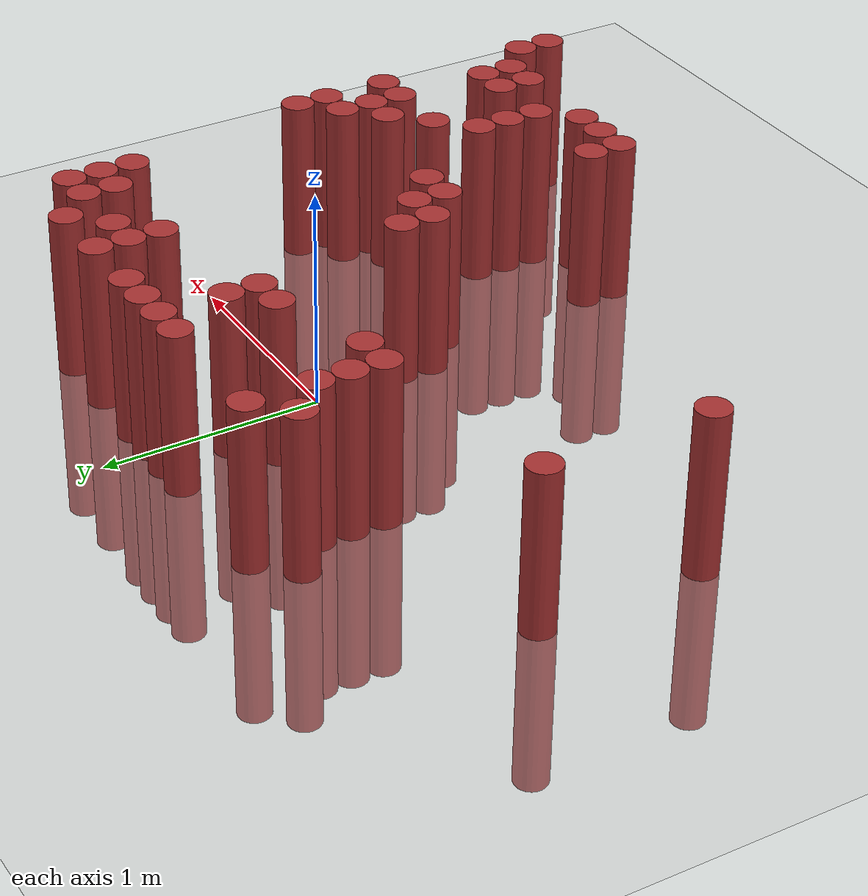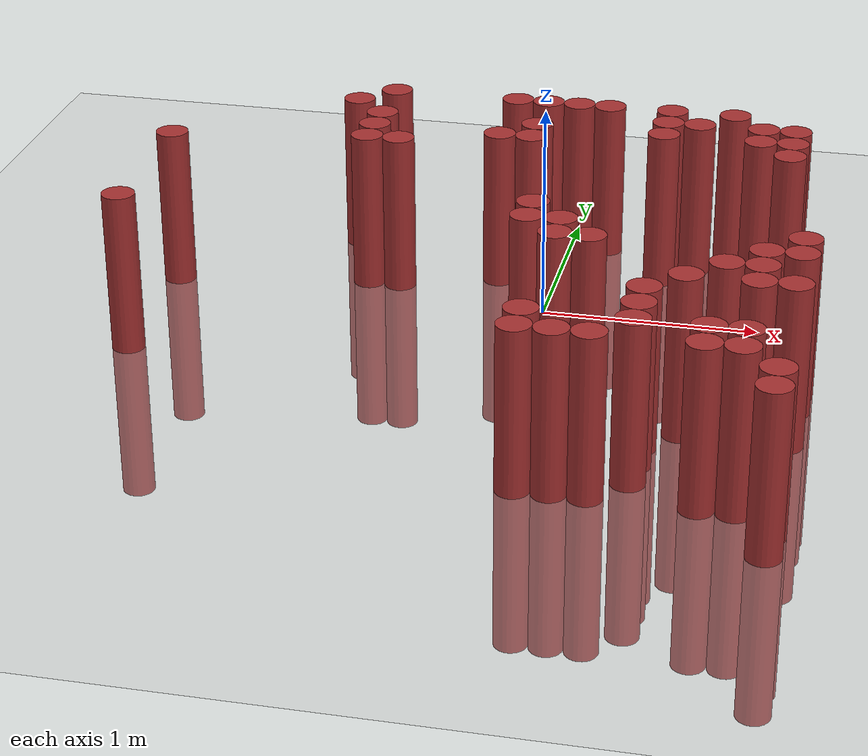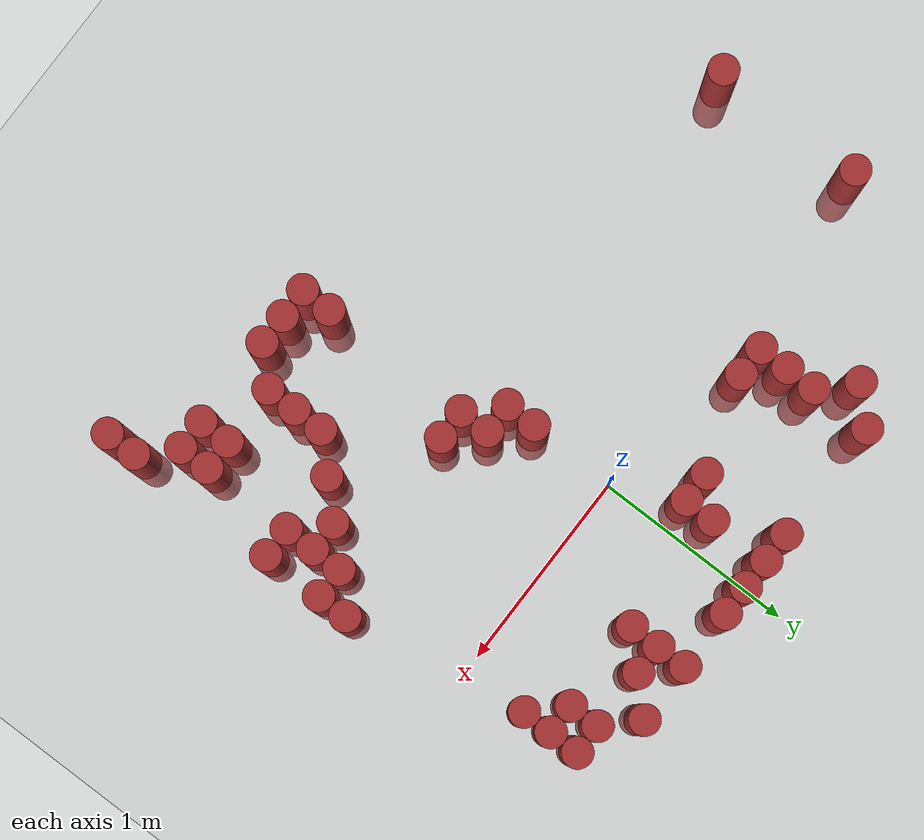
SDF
<sdf version="1.6">
 <world name="default">
  <model name="ground_plane">
   <static>1</static>
   <link name="link">
    <collision name="collision">
     <geometry><plane><normal>0 0 1</normal><size>100 100</size></plane></geometry>
     <surface><friction><ode><mu>100</mu><mu2>50</mu2></ode></friction></surface>
    </collision>
    <visual name="visual">
     <cast_shadows>0</cast_shadows>
     <geometry><plane><normal>0 0 1</normal><size>100 100</size></plane></geometry>
     <material>
      <script><uri>file://media/materials/scripts/gazebo.material</uri><name>Gazebo/Grey</name></script>
     </material>
    </visual>
   </link>
  </model>
  <model name="unit_cylinder_303">
   <static>1</static>
   <pose>-1.775000 -0.725000 0.000000 0.000000 0.000000 0.000000</pose>
   <link name="link">
    <inertial>
     <mass>1</mass>
     <inertia><ixx>0.145833</ixx><ixy>0</ixy><ixz>0</ixz><iyy>0.145833</iyy><iyz>0</iyz><izz>0.125</izz></inertia>
    </inertial>
    <collision name="collision">
     <geometry><cylinder><radius>0.075000</radius><length>1.5</length></cylinder></geometry>
    </collision>
    <visual name="visual">
     <geometry><cylinder><radius>0.075000</radius><length>1.5</length></cylinder></geometry>
     <material>
      <ambient>0.648000 0.192000 0.192000 1</ambient>
      <diffuse>0.648000 0.192000 0.192000 1</diffuse>
     </material>
     <material>
      <script><name>Gazebo/Grey</name><uri>file://media/materials/scripts/gazebo.material</uri></script>
     </material>
    </visual>
   </link>
  </model>
  <model name="unit_cylinder_304">
   <static>1</static>
   <pose>-1.775000 0.025000 0.000000 0.000000 0.000000 0.000000</pose>
   <link name="link">
    <inertial>
     <mass>1</mass>
     <inertia><ixx>0.145833</ixx><ixy>0</ixy><ixz>0</ixz><iyy>0.145833</iyy><iyz>0</iyz><izz>0.125</izz></inertia>
    </inertial>
    <collision name="collision">
     <geometry><cylinder><radius>0.075000</radius><length>1.5</length></cylinder></geometry>
    </collision>
    <visual name="visual">
     <geometry><cylinder><radius>0.075000</radius><length>1.5</length></cylinder></geometry>
     <material>
      <ambient>0.648000 0.192000 0.192000 1</ambient>
      <diffuse>0.648000 0.192000 0.192000 1</diffuse>
     </material>
     <material>
      <script><name>Gazebo/Grey</name><uri>file://media/materials/scripts/gazebo.material</uri></script>
     </material>
    </visual>
   </link>
  </model>
  <model name="unit_cylinder_313">
   <static>1</static>
   <pose>-1.025000 0.625000 0.000000 0.000000 0.000000 0.000000</pose>
   <link name="link">
    <inertial>
     <mass>1</mass>
     <inertia><ixx>0.145833</ixx><ixy>0</ixy><ixz>0</ixz><iyy>0.145833</iyy><iyz>0</iyz><izz>0.125</izz></inertia>
    </inertial>
    <collision name="collision">
     <geometry><cylinder><radius>0.075000</radius><length>1.5</length></cylinder></geometry>
    </collision>
    <visual name="visual">
     <geometry><cylinder><radius>0.075000</radius><length>1.5</length></cylinder></geometry>
     <material>
      <ambient>0.648000 0.192000 0.192000 1</ambient>
      <diffuse>0.648000 0.192000 0.192000 1</diffuse>
     </material>
     <material>
      <script><name>Gazebo/Grey</name><uri>file://media/materials/scripts/gazebo.material</uri></script>
     </material>
    </visual>
   </link>
  </model>
  <model name="unit_cylinder_316">
   <static>1</static>
   <pose>-0.875000 0.175000 0.000000 0.000000 0.000000 0.000000</pose>
   <link name="link">
    <inertial>
     <mass>1</mass>
     <inertia><ixx>0.145833</ixx><ixy>0</ixy><ixz>0</ixz><iyy>0.145833</iyy><iyz>0</iyz><izz>0.125</izz></inertia>
    </inertial>
    <collision name="collision">
     <geometry><cylinder><radius>0.075000</radius><length>1.5</length></cylinder></geometry>
    </collision>
    <visual name="visual">
     <geometry><cylinder><radius>0.075000</radius><length>1.5</length></cylinder></geometry>
     <material>
      <ambient>0.648000 0.192000 0.192000 1</ambient>
      <diffuse>0.648000 0.192000 0.192000 1</diffuse>
     </material>
     <material>
      <script><name>Gazebo/Grey</name><uri>file://media/materials/scripts/gazebo.material</uri></script>
     </material>
    </visual>
   </link>
  </model>
  <model name="unit_cylinder_317">
   <static>1</static>
   <pose>-0.875000 0.325000 0.000000 0.000000 0.000000 0.000000</pose>
   <link name="link">
    <inertial>
     <mass>1</mass>
     <inertia><ixx>0.145833</ixx><ixy>0</ixy><ixz>0</ixz><iyy>0.145833</iyy><iyz>0</iyz><izz>0.125</izz></inertia>
    </inertial>
    <collision name="collision">
     <geometry><cylinder><radius>0.075000</radius><length>1.5</length></cylinder></geometry>
    </collision>
    <visual name="visual">
     <geometry><cylinder><radius>0.075000</radius><length>1.5</length></cylinder></geometry>
     <material>
      <ambient>0.648000 0.192000 0.192000 1</ambient>
      <diffuse>0.648000 0.192000 0.192000 1</diffuse>
     </material>
     <material>
      <script><name>Gazebo/Grey</name><uri>file://media/materials/scripts/gazebo.material</uri></script>
     </material>
    </visual>
   </link>
  </model>
  <model name="unit_cylinder_318">
   <static>1</static>
   <pose>-0.875000 0.475000 0.000000 0.000000 0.000000 0.000000</pose>
   <link name="link">
    <inertial>
     <mass>1</mass>
     <inertia><ixx>0.145833</ixx><ixy>0</ixy><ixz>0</ixz><iyy>0.145833</iyy><iyz>0</iyz><izz>0.125</izz></inertia>
    </inertial>
    <collision name="collision">
     <geometry><cylinder><radius>0.075000</radius><length>1.5</length></cylinder></geometry>
    </collision>
    <visual name="visual">
     <geometry><cylinder><radius>0.075000</radius><length>1.5</length></cylinder></geometry>
     <material>
      <ambient>0.648000 0.192000 0.192000 1</ambient>
      <diffuse>0.648000 0.192000 0.192000 1</diffuse>
     </material>
     <material>
      <script><name>Gazebo/Grey</name><uri>file://media/materials/scripts/gazebo.material</uri></script>
     </material>
    </visual>
   </link>
  </model>
  <model name="unit_cylinder_319">
   <static>1</static>
   <pose>-0.875000 0.775000 0.000000 0.000000 0.000000 0.000000</pose>
   <link name="link">
    <inertial>
     <mass>1</mass>
     <inertia><ixx>0.145833</ixx><ixy>0</ixy><ixz>0</ixz><iyy>0.145833</iyy><iyz>0</iyz><izz>0.125</izz></inertia>
    </inertial>
    <collision name="collision">
     <geometry><cylinder><radius>0.075000</radius><length>1.5</length></cylinder></geometry>
    </collision>
    <visual name="visual">
     <geometry><cylinder><radius>0.075000</radius><length>1.5</length></cylinder></geometry>
     <material>
      <ambient>0.648000 0.192000 0.192000 1</ambient>
      <diffuse>0.648000 0.192000 0.192000 1</diffuse>
     </material>
     <material>
      <script><name>Gazebo/Grey</name><uri>file://media/materials/scripts/gazebo.material</uri></script>
     </material>
    </visual>
   </link>
  </model>
  <model name="unit_cylinder_322">
   <static>1</static>
   <pose>-0.725000 0.175000 0.000000 0.000000 0.000000 0.000000</pose>
   <link name="link">
    <inertial>
     <mass>1</mass>
     <inertia><ixx>0.145833</ixx><ixy>0</ixy><ixz>0</ixz><iyy>0.145833</iyy><iyz>0</iyz><izz>0.125</izz></inertia>
    </inertial>
    <collision name="collision">
     <geometry><cylinder><radius>0.075000</radius><length>1.5</length></cylinder></geometry>
    </collision>
    <visual name="visual">
     <geometry><cylinder><radius>0.075000</radius><length>1.5</length></cylinder></geometry>
     <material>
      <ambient>0.648000 0.192000 0.192000 1</ambient>
      <diffuse>0.648000 0.192000 0.192000 1</diffuse>
     </material>
     <material>
      <script><name>Gazebo/Grey</name><uri>file://media/materials/scripts/gazebo.material</uri></script>
     </material>
    </visual>
   </link>
  </model>
  <model name="unit_cylinder_328">
   <static>1</static>
   <pose>-0.275000 0.325000 0.000000 0.000000 0.000000 0.000000</pose>
   <link name="link">
    <inertial>
     <mass>1</mass>
     <inertia><ixx>0.145833</ixx><ixy>0</ixy><ixz>0</ixz><iyy>0.145833</iyy><iyz>0</iyz><izz>0.125</izz></inertia>
    </inertial>
    <collision name="collision">
     <geometry><cylinder><radius>0.075000</radius><length>1.5</length></cylinder></geometry>
    </collision>
    <visual name="visual">
     <geometry><cylinder><radius>0.075000</radius><length>1.5</length></cylinder></geometry>
     <material>
      <ambient>0.648000 0.192000 0.192000 1</ambient>
      <diffuse>0.648000 0.192000 0.192000 1</diffuse>
     </material>
     <material>
      <script><name>Gazebo/Grey</name><uri>file://media/materials/scripts/gazebo.material</uri></script>
     </material>
    </visual>
   </link>
  </model>
  <model name="unit_cylinder_329">
   <static>1</static>
   <pose>-0.275000 0.775000 0.000000 0.000000 0.000000 0.000000</pose>
   <link name="link">
    <inertial>
     <mass>1</mass>
     <inertia><ixx>0.145833</ixx><ixy>0</ixy><ixz>0</ixz><iyy>0.145833</iyy><iyz>0</iyz><izz>0.125</izz></inertia>
    </inertial>
    <collision name="collision">
     <geometry><cylinder><radius>0.075000</radius><length>1.5</length></cylinder></geometry>
    </collision>
    <visual name="visual">
     <geometry><cylinder><radius>0.075000</radius><length>1.5</length></cylinder></geometry>
     <material>
      <ambient>0.648000 0.192000 0.192000 1</ambient>
      <diffuse>0.648000 0.192000 0.192000 1</diffuse>
     </material>
     <material>
      <script><name>Gazebo/Grey</name><uri>file://media/materials/scripts/gazebo.material</uri></script>
     </material>
    </visual>
   </link>
  </model>
  <model name="unit_cylinder_336">
   <static>1</static>
   <pose>-0.125000 0.325000 0.000000 0.000000 0.000000 0.000000</pose>
   <link name="link">
    <inertial>
     <mass>1</mass>
     <inertia><ixx>0.145833</ixx><ixy>0</ixy><ixz>0</ixz><iyy>0.145833</iyy><iyz>0</iyz><izz>0.125</izz></inertia>
    </inertial>
    <collision name="collision">
     <geometry><cylinder><radius>0.075000</radius><length>1.5</length></cylinder></geometry>
    </collision>
    <visual name="visual">
     <geometry><cylinder><radius>0.075000</radius><length>1.5</length></cylinder></geometry>
     <material>
      <ambient>0.648000 0.192000 0.192000 1</ambient>
      <diffuse>0.648000 0.192000 0.192000 1</diffuse>
     </material>
     <material>
      <script><name>Gazebo/Grey</name><uri>file://media/materials/scripts/gazebo.material</uri></script>
     </material>
    </visual>
   </link>
  </model>
  <model name="unit_cylinder_337">
   <static>1</static>
   <pose>-0.125000 0.475000 0.000000 0.000000 0.000000 0.000000</pose>
   <link name="link">
    <inertial>
     <mass>1</mass>
     <inertia><ixx>0.145833</ixx><ixy>0</ixy><ixz>0</ixz><iyy>0.145833</iyy><iyz>0</iyz><izz>0.125</izz></inertia>
    </inertial>
    <collision name="collision">
     <geometry><cylinder><radius>0.075000</radius><length>1.5</length></cylinder></geometry>
    </collision>
    <visual name="visual">
     <geometry><cylinder><radius>0.075000</radius><length>1.5</length></cylinder></geometry>
     <material>
      <ambient>0.648000 0.192000 0.192000 1</ambient>
      <diffuse>0.648000 0.192000 0.192000 1</diffuse>
     </material>
     <material>
      <script><name>Gazebo/Grey</name><uri>file://media/materials/scripts/gazebo.material</uri></script>
     </material>
    </visual>
   </link>
  </model>
  <model name="unit_cylinder_338">
   <static>1</static>
   <pose>-0.125000 0.775000 0.000000 0.000000 0.000000 0.000000</pose>
   <link name="link">
    <inertial>
     <mass>1</mass>
     <inertia><ixx>0.145833</ixx><ixy>0</ixy><ixz>0</ixz><iyy>0.145833</iyy><iyz>0</iyz><izz>0.125</izz></inertia>
    </inertial>
    <collision name="collision">
     <geometry><cylinder><radius>0.075000</radius><length>1.5</length></cylinder></geometry>
    </collision>
    <visual name="visual">
     <geometry><cylinder><radius>0.075000</radius><length>1.5</length></cylinder></geometry>
     <material>
      <ambient>0.648000 0.192000 0.192000 1</ambient>
      <diffuse>0.648000 0.192000 0.192000 1</diffuse>
     </material>
     <material>
      <script><name>Gazebo/Grey</name><uri>file://media/materials/scripts/gazebo.material</uri></script>
     </material>
    </visual>
   </link>
  </model>
  <model name="unit_cylinder_342">
   <static>1</static>
   <pose>0.025000 -0.575000 0.000000 0.000000 0.000000 0.000000</pose>
   <link name="link">
    <inertial>
     <mass>1</mass>
     <inertia><ixx>0.145833</ixx><ixy>0</ixy><ixz>0</ixz><iyy>0.145833</iyy><iyz>0</iyz><izz>0.125</izz></inertia>
    </inertial>
    <collision name="collision">
     <geometry><cylinder><radius>0.075000</radius><length>1.5</length></cylinder></geometry>
    </collision>
    <visual name="visual">
     <geometry><cylinder><radius>0.075000</radius><length>1.5</length></cylinder></geometry>
     <material>
      <ambient>0.648000 0.192000 0.192000 1</ambient>
      <diffuse>0.648000 0.192000 0.192000 1</diffuse>
     </material>
     <material>
      <script><name>Gazebo/Grey</name><uri>file://media/materials/scripts/gazebo.material</uri></script>
     </material>
    </visual>
   </link>
  </model>
  <model name="unit_cylinder_343">
   <static>1</static>
   <pose>0.025000 -0.425000 0.000000 0.000000 0.000000 0.000000</pose>
   <link name="link">
    <inertial>
     <mass>1</mass>
     <inertia><ixx>0.145833</ixx><ixy>0</ixy><ixz>0</ixz><iyy>0.145833</iyy><iyz>0</iyz><izz>0.125</izz></inertia>
    </inertial>
    <collision name="collision">
     <geometry><cylinder><radius>0.075000</radius><length>1.5</length></cylinder></geometry>
    </collision>
    <visual name="visual">
     <geometry><cylinder><radius>0.075000</radius><length>1.5</length></cylinder></geometry>
     <material>
      <ambient>0.648000 0.192000 0.192000 1</ambient>
      <diffuse>0.648000 0.192000 0.192000 1</diffuse>
     </material>
     <material>
      <script><name>Gazebo/Grey</name><uri>file://media/materials/scripts/gazebo.material</uri></script>
     </material>
    </visual>
   </link>
  </model>
  <model name="unit_cylinder_344">
   <static>1</static>
   <pose>0.025000 0.775000 0.000000 0.000000 0.000000 0.000000</pose>
   <link name="link">
    <inertial>
     <mass>1</mass>
     <inertia><ixx>0.145833</ixx><ixy>0</ixy><ixz>0</ixz><iyy>0.145833</iyy><iyz>0</iyz><izz>0.125</izz></inertia>
    </inertial>
    <collision name="collision">
     <geometry><cylinder><radius>0.075000</radius><length>1.5</length></cylinder></geometry>
    </collision>
    <visual name="visual">
     <geometry><cylinder><radius>0.075000</radius><length>1.5</length></cylinder></geometry>
     <material>
      <ambient>0.648000 0.192000 0.192000 1</ambient>
      <diffuse>0.648000 0.192000 0.192000 1</diffuse>
     </material>
     <material>
      <script><name>Gazebo/Grey</name><uri>file://media/materials/scripts/gazebo.material</uri></script>
     </material>
    </visual>
   </link>
  </model>
  <model name="unit_cylinder_348">
   <static>1</static>
   <pose>0.175000 -1.625000 0.000000 0.000000 0.000000 0.000000</pose>
   <link name="link">
    <inertial>
     <mass>1</mass>
     <inertia><ixx>0.145833</ixx><ixy>0</ixy><ixz>0</ixz><iyy>0.145833</iyy><iyz>0</iyz><izz>0.125</izz></inertia>
    </inertial>
    <collision name="collision">
     <geometry><cylinder><radius>0.075000</radius><length>1.5</length></cylinder></geometry>
    </collision>
    <visual name="visual">
     <geometry><cylinder><radius>0.075000</radius><length>1.5</length></cylinder></geometry>
     <material>
      <ambient>0.648000 0.192000 0.192000 1</ambient>
      <diffuse>0.648000 0.192000 0.192000 1</diffuse>
     </material>
     <material>
      <script><name>Gazebo/Grey</name><uri>file://media/materials/scripts/gazebo.material</uri></script>
     </material>
    </visual>
   </link>
  </model>
  <model name="unit_cylinder_349">
   <static>1</static>
   <pose>0.175000 -1.475000 0.000000 0.000000 0.000000 0.000000</pose>
   <link name="link">
    <inertial>
     <mass>1</mass>
     <inertia><ixx>0.145833</ixx><ixy>0</ixy><ixz>0</ixz><iyy>0.145833</iyy><iyz>0</iyz><izz>0.125</izz></inertia>
    </inertial>
    <collision name="collision">
     <geometry><cylinder><radius>0.075000</radius><length>1.5</length></cylinder></geometry>
    </collision>
    <visual name="visual">
     <geometry><cylinder><radius>0.075000</radius><length>1.5</length></cylinder></geometry>
     <material>
      <ambient>0.648000 0.192000 0.192000 1</ambient>
      <diffuse>0.648000 0.192000 0.192000 1</diffuse>
     </material>
     <material>
      <script><name>Gazebo/Grey</name><uri>file://media/materials/scripts/gazebo.material</uri></script>
     </material>
    </visual>
   </link>
  </model>
  <model name="unit_cylinder_350">
   <static>1</static>
   <pose>0.175000 -0.725000 0.000000 0.000000 0.000000 0.000000</pose>
   <link name="link">
    <inertial>
     <mass>1</mass>
     <inertia><ixx>0.145833</ixx><ixy>0</ixy><ixz>0</ixz><iyy>0.145833</iyy><iyz>0</iyz><izz>0.125</izz></inertia>
    </inertial>
    <collision name="collision">
     <geometry><cylinder><radius>0.075000</radius><length>1.5</length></cylinder></geometry>
    </collision>
    <visual name="visual">
     <geometry><cylinder><radius>0.075000</radius><length>1.5</length></cylinder></geometry>
     <material>
      <ambient>0.648000 0.192000 0.192000 1</ambient>
      <diffuse>0.648000 0.192000 0.192000 1</diffuse>
     </material>
     <material>
      <script><name>Gazebo/Grey</name><uri>file://media/materials/scripts/gazebo.material</uri></script>
     </material>
    </visual>
   </link>
  </model>
  <model name="unit_cylinder_351">
   <static>1</static>
   <pose>0.175000 -0.575000 0.000000 0.000000 0.000000 0.000000</pose>
   <link name="link">
    <inertial>
     <mass>1</mass>
     <inertia><ixx>0.145833</ixx><ixy>0</ixy><ixz>0</ixz><iyy>0.145833</iyy><iyz>0</iyz><izz>0.125</izz></inertia>
    </inertial>
    <collision name="collision">
     <geometry><cylinder><radius>0.075000</radius><length>1.5</length></cylinder></geometry>
    </collision>
    <visual name="visual">
     <geometry><cylinder><radius>0.075000</radius><length>1.5</length></cylinder></geometry>
     <material>
      <ambient>0.648000 0.192000 0.192000 1</ambient>
      <diffuse>0.648000 0.192000 0.192000 1</diffuse>
     </material>
     <material>
      <script><name>Gazebo/Grey</name><uri>file://media/materials/scripts/gazebo.material</uri></script>
     </material>
    </visual>
   </link>
  </model>
  <model name="unit_cylinder_352">
   <static>1</static>
   <pose>0.175000 0.775000 0.000000 0.000000 0.000000 0.000000</pose>
   <link name="link">
    <inertial>
     <mass>1</mass>
     <inertia><ixx>0.145833</ixx><ixy>0</ixy><ixz>0</ixz><iyy>0.145833</iyy><iyz>0</iyz><izz>0.125</izz></inertia>
    </inertial>
    <collision name="collision">
     <geometry><cylinder><radius>0.075000</radius><length>1.5</length></cylinder></geometry>
    </collision>
    <visual name="visual">
     <geometry><cylinder><radius>0.075000</radius><length>1.5</length></cylinder></geometry>
     <material>
      <ambient>0.648000 0.192000 0.192000 1</ambient>
      <diffuse>0.648000 0.192000 0.192000 1</diffuse>
     </material>
     <material>
      <script><name>Gazebo/Grey</name><uri>file://media/materials/scripts/gazebo.material</uri></script>
     </material>
    </visual>
   </link>
  </model>
  <model name="unit_cylinder_358">
   <static>1</static>
   <pose>0.325000 -1.625000 0.000000 0.000000 0.000000 0.000000</pose>
   <link name="link">
    <inertial>
     <mass>1</mass>
     <inertia><ixx>0.145833</ixx><ixy>0</ixy><ixz>0</ixz><iyy>0.145833</iyy><iyz>0</iyz><izz>0.125</izz></inertia>
    </inertial>
    <collision name="collision">
     <geometry><cylinder><radius>0.075000</radius><length>1.5</length></cylinder></geometry>
    </collision>
    <visual name="visual">
     <geometry><cylinder><radius>0.075000</radius><length>1.5</length></cylinder></geometry>
     <material>
      <ambient>0.648000 0.192000 0.192000 1</ambient>
      <diffuse>0.648000 0.192000 0.192000 1</diffuse>
     </material>
     <material>
      <script><name>Gazebo/Grey</name><uri>file://media/materials/scripts/gazebo.material</uri></script>
     </material>
    </visual>
   </link>
  </model>
  <model name="unit_cylinder_359">
   <static>1</static>
   <pose>0.325000 -0.725000 0.000000 0.000000 0.000000 0.000000</pose>
   <link name="link">
    <inertial>
     <mass>1</mass>
     <inertia><ixx>0.145833</ixx><ixy>0</ixy><ixz>0</ixz><iyy>0.145833</iyy><iyz>0</iyz><izz>0.125</izz></inertia>
    </inertial>
    <collision name="collision">
     <geometry><cylinder><radius>0.075000</radius><length>1.5</length></cylinder></geometry>
    </collision>
    <visual name="visual">
     <geometry><cylinder><radius>0.075000</radius><length>1.5</length></cylinder></geometry>
     <material>
      <ambient>0.648000 0.192000 0.192000 1</ambient>
      <diffuse>0.648000 0.192000 0.192000 1</diffuse>
     </material>
     <material>
      <script><name>Gazebo/Grey</name><uri>file://media/materials/scripts/gazebo.material</uri></script>
     </material>
    </visual>
   </link>
  </model>
  <model name="unit_cylinder_363">
   <static>1</static>
   <pose>0.475000 -1.625000 0.000000 0.000000 0.000000 0.000000</pose>
   <link name="link">
    <inertial>
     <mass>1</mass>
     <inertia><ixx>0.145833</ixx><ixy>0</ixy><ixz>0</ixz><iyy>0.145833</iyy><iyz>0</iyz><izz>0.125</izz></inertia>
    </inertial>
    <collision name="collision">
     <geometry><cylinder><radius>0.075000</radius><length>1.5</length></cylinder></geometry>
    </collision>
    <visual name="visual">
     <geometry><cylinder><radius>0.075000</radius><length>1.5</length></cylinder></geometry>
     <material>
      <ambient>0.648000 0.192000 0.192000 1</ambient>
      <diffuse>0.648000 0.192000 0.192000 1</diffuse>
     </material>
     <material>
      <script><name>Gazebo/Grey</name><uri>file://media/materials/scripts/gazebo.material</uri></script>
     </material>
    </visual>
   </link>
  </model>
  <model name="unit_cylinder_364">
   <static>1</static>
   <pose>0.475000 0.475000 0.000000 0.000000 0.000000 0.000000</pose>
   <link name="link">
    <inertial>
     <mass>1</mass>
     <inertia><ixx>0.145833</ixx><ixy>0</ixy><ixz>0</ixz><iyy>0.145833</iyy><iyz>0</iyz><izz>0.125</izz></inertia>
    </inertial>
    <collision name="collision">
     <geometry><cylinder><radius>0.075000</radius><length>1.5</length></cylinder></geometry>
    </collision>
    <visual name="visual">
     <geometry><cylinder><radius>0.075000</radius><length>1.5</length></cylinder></geometry>
     <material>
      <ambient>0.648000 0.192000 0.192000 1</ambient>
      <diffuse>0.648000 0.192000 0.192000 1</diffuse>
     </material>
     <material>
      <script><name>Gazebo/Grey</name><uri>file://media/materials/scripts/gazebo.material</uri></script>
     </material>
    </visual>
   </link>
  </model>
  <model name="unit_cylinder_365">
   <static>1</static>
   <pose>0.475000 0.625000 0.000000 0.000000 0.000000 0.000000</pose>
   <link name="link">
    <inertial>
     <mass>1</mass>
     <inertia><ixx>0.145833</ixx><ixy>0</ixy><ixz>0</ixz><iyy>0.145833</iyy><iyz>0</iyz><izz>0.125</izz></inertia>
    </inertial>
    <collision name="collision">
     <geometry><cylinder><radius>0.075000</radius><length>1.5</length></cylinder></geometry>
    </collision>
    <visual name="visual">
     <geometry><cylinder><radius>0.075000</radius><length>1.5</length></cylinder></geometry>
     <material>
      <ambient>0.648000 0.192000 0.192000 1</ambient>
      <diffuse>0.648000 0.192000 0.192000 1</diffuse>
     </material>
     <material>
      <script><name>Gazebo/Grey</name><uri>file://media/materials/scripts/gazebo.material</uri></script>
     </material>
    </visual>
   </link>
  </model>
  <model name="unit_cylinder_366">
   <static>1</static>
   <pose>0.475000 0.775000 0.000000 0.000000 0.000000 0.000000</pose>
   <link name="link">
    <inertial>
     <mass>1</mass>
     <inertia><ixx>0.145833</ixx><ixy>0</ixy><ixz>0</ixz><iyy>0.145833</iyy><iyz>0</iyz><izz>0.125</izz></inertia>
    </inertial>
    <collision name="collision">
     <geometry><cylinder><radius>0.075000</radius><length>1.5</length></cylinder></geometry>
    </collision>
    <visual name="visual">
     <geometry><cylinder><radius>0.075000</radius><length>1.5</length></cylinder></geometry>
     <material>
      <ambient>0.648000 0.192000 0.192000 1</ambient>
      <diffuse>0.648000 0.192000 0.192000 1</diffuse>
     </material>
     <material>
      <script><name>Gazebo/Grey</name><uri>file://media/materials/scripts/gazebo.material</uri></script>
     </material>
    </visual>
   </link>
  </model>
  <model name="unit_cylinder_370">
   <static>1</static>
   <pose>0.625000 -1.475000 0.000000 0.000000 0.000000 0.000000</pose>
   <link name="link">
    <inertial>
     <mass>1</mass>
     <inertia><ixx>0.145833</ixx><ixy>0</ixy><ixz>0</ixz><iyy>0.145833</iyy><iyz>0</iyz><izz>0.125</izz></inertia>
    </inertial>
    <collision name="collision">
     <geometry><cylinder><radius>0.075000</radius><length>1.5</length></cylinder></geometry>
    </collision>
    <visual name="visual">
     <geometry><cylinder><radius>0.075000</radius><length>1.5</length></cylinder></geometry>
     <material>
      <ambient>0.648000 0.192000 0.192000 1</ambient>
      <diffuse>0.648000 0.192000 0.192000 1</diffuse>
     </material>
     <material>
      <script><name>Gazebo/Grey</name><uri>file://media/materials/scripts/gazebo.material</uri></script>
     </material>
    </visual>
   </link>
  </model>
  <model name="unit_cylinder_371">
   <static>1</static>
   <pose>0.625000 -1.325000 0.000000 0.000000 0.000000 0.000000</pose>
   <link name="link">
    <inertial>
     <mass>1</mass>
     <inertia><ixx>0.145833</ixx><ixy>0</ixy><ixz>0</ixz><iyy>0.145833</iyy><iyz>0</iyz><izz>0.125</izz></inertia>
    </inertial>
    <collision name="collision">
     <geometry><cylinder><radius>0.075000</radius><length>1.5</length></cylinder></geometry>
    </collision>
    <visual name="visual">
     <geometry><cylinder><radius>0.075000</radius><length>1.5</length></cylinder></geometry>
     <material>
      <ambient>0.648000 0.192000 0.192000 1</ambient>
      <diffuse>0.648000 0.192000 0.192000 1</diffuse>
     </material>
     <material>
      <script><name>Gazebo/Grey</name><uri>file://media/materials/scripts/gazebo.material</uri></script>
     </material>
    </visual>
   </link>
  </model>
  <model name="unit_cylinder_372">
   <static>1</static>
   <pose>0.625000 -1.175000 0.000000 0.000000 0.000000 0.000000</pose>
   <link name="link">
    <inertial>
     <mass>1</mass>
     <inertia><ixx>0.145833</ixx><ixy>0</ixy><ixz>0</ixz><iyy>0.145833</iyy><iyz>0</iyz><izz>0.125</izz></inertia>
    </inertial>
    <collision name="collision">
     <geometry><cylinder><radius>0.075000</radius><length>1.5</length></cylinder></geometry>
    </collision>
    <visual name="visual">
     <geometry><cylinder><radius>0.075000</radius><length>1.5</length></cylinder></geometry>
     <material>
      <ambient>0.648000 0.192000 0.192000 1</ambient>
      <diffuse>0.648000 0.192000 0.192000 1</diffuse>
     </material>
     <material>
      <script><name>Gazebo/Grey</name><uri>file://media/materials/scripts/gazebo.material</uri></script>
     </material>
    </visual>
   </link>
  </model>
  <model name="unit_cylinder_373">
   <static>1</static>
   <pose>0.625000 0.625000 0.000000 0.000000 0.000000 0.000000</pose>
   <link name="link">
    <inertial>
     <mass>1</mass>
     <inertia><ixx>0.145833</ixx><ixy>0</ixy><ixz>0</ixz><iyy>0.145833</iyy><iyz>0</iyz><izz>0.125</izz></inertia>
    </inertial>
    <collision name="collision">
     <geometry><cylinder><radius>0.075000</radius><length>1.5</length></cylinder></geometry>
    </collision>
    <visual name="visual">
     <geometry><cylinder><radius>0.075000</radius><length>1.5</length></cylinder></geometry>
     <material>
      <ambient>0.648000 0.192000 0.192000 1</ambient>
      <diffuse>0.648000 0.192000 0.192000 1</diffuse>
     </material>
     <material>
      <script><name>Gazebo/Grey</name><uri>file://media/materials/scripts/gazebo.material</uri></script>
     </material>
    </visual>
   </link>
  </model>
  <model name="unit_cylinder_379">
   <static>1</static>
   <pose>0.775000 -1.025000 0.000000 0.000000 0.000000 0.000000</pose>
   <link name="link">
    <inertial>
     <mass>1</mass>
     <inertia><ixx>0.145833</ixx><ixy>0</ixy><ixz>0</ixz><iyy>0.145833</iyy><iyz>0</iyz><izz>0.125</izz></inertia>
    </inertial>
    <collision name="collision">
     <geometry><cylinder><radius>0.075000</radius><length>1.5</length></cylinder></geometry>
    </collision>
    <visual name="visual">
     <geometry><cylinder><radius>0.075000</radius><length>1.5</length></cylinder></geometry>
     <material>
      <ambient>0.648000 0.192000 0.192000 1</ambient>
      <diffuse>0.648000 0.192000 0.192000 1</diffuse>
     </material>
     <material>
      <script><name>Gazebo/Grey</name><uri>file://media/materials/scripts/gazebo.material</uri></script>
     </material>
    </visual>
   </link>
  </model>
  <model name="unit_cylinder_380">
   <static>1</static>
   <pose>0.775000 0.775000 0.000000 0.000000 0.000000 0.000000</pose>
   <link name="link">
    <inertial>
     <mass>1</mass>
     <inertia><ixx>0.145833</ixx><ixy>0</ixy><ixz>0</ixz><iyy>0.145833</iyy><iyz>0</iyz><izz>0.125</izz></inertia>
    </inertial>
    <collision name="collision">
     <geometry><cylinder><radius>0.075000</radius><length>1.5</length></cylinder></geometry>
    </collision>
    <visual name="visual">
     <geometry><cylinder><radius>0.075000</radius><length>1.5</length></cylinder></geometry>
     <material>
      <ambient>0.648000 0.192000 0.192000 1</ambient>
      <diffuse>0.648000 0.192000 0.192000 1</diffuse>
     </material>
     <material>
      <script><name>Gazebo/Grey</name><uri>file://media/materials/scripts/gazebo.material</uri></script>
     </material>
    </visual>
   </link>
  </model>
  <model name="unit_cylinder_388">
   <static>1</static>
   <pose>0.925000 -1.625000 0.000000 0.000000 0.000000 0.000000</pose>
   <link name="link">
    <inertial>
     <mass>1</mass>
     <inertia><ixx>0.145833</ixx><ixy>0</ixy><ixz>0</ixz><iyy>0.145833</iyy><iyz>0</iyz><izz>0.125</izz></inertia>
    </inertial>
    <collision name="collision">
     <geometry><cylinder><radius>0.075000</radius><length>1.5</length></cylinder></geometry>
    </collision>
    <visual name="visual">
     <geometry><cylinder><radius>0.075000</radius><length>1.5</length></cylinder></geometry>
     <material>
      <ambient>0.648000 0.192000 0.192000 1</ambient>
      <diffuse>0.648000 0.192000 0.192000 1</diffuse>
     </material>
     <material>
      <script><name>Gazebo/Grey</name><uri>file://media/materials/scripts/gazebo.material</uri></script>
     </material>
    </visual>
   </link>
  </model>
  <model name="unit_cylinder_389">
   <static>1</static>
   <pose>0.925000 -1.475000 0.000000 0.000000 0.000000 0.000000</pose>
   <link name="link">
    <inertial>
     <mass>1</mass>
     <inertia><ixx>0.145833</ixx><ixy>0</ixy><ixz>0</ixz><iyy>0.145833</iyy><iyz>0</iyz><izz>0.125</izz></inertia>
    </inertial>
    <collision name="collision">
     <geometry><cylinder><radius>0.075000</radius><length>1.5</length></cylinder></geometry>
    </collision>
    <visual name="visual">
     <geometry><cylinder><radius>0.075000</radius><length>1.5</length></cylinder></geometry>
     <material>
      <ambient>0.648000 0.192000 0.192000 1</ambient>
      <diffuse>0.648000 0.192000 0.192000 1</diffuse>
     </material>
     <material>
      <script><name>Gazebo/Grey</name><uri>file://media/materials/scripts/gazebo.material</uri></script>
     </material>
    </visual>
   </link>
  </model>
  <model name="unit_cylinder_390">
   <static>1</static>
   <pose>0.925000 -0.875000 0.000000 0.000000 0.000000 0.000000</pose>
   <link name="link">
    <inertial>
     <mass>1</mass>
     <inertia><ixx>0.145833</ixx><ixy>0</ixy><ixz>0</ixz><iyy>0.145833</iyy><iyz>0</iyz><izz>0.125</izz></inertia>
    </inertial>
    <collision name="collision">
     <geometry><cylinder><radius>0.075000</radius><length>1.5</length></cylinder></geometry>
    </collision>
    <visual name="visual">
     <geometry><cylinder><radius>0.075000</radius><length>1.5</length></cylinder></geometry>
     <material>
      <ambient>0.648000 0.192000 0.192000 1</ambient>
      <diffuse>0.648000 0.192000 0.192000 1</diffuse>
     </material>
     <material>
      <script><name>Gazebo/Grey</name><uri>file://media/materials/scripts/gazebo.material</uri></script>
     </material>
    </visual>
   </link>
  </model>
  <model name="unit_cylinder_391">
   <static>1</static>
   <pose>0.925000 0.475000 0.000000 0.000000 0.000000 0.000000</pose>
   <link name="link">
    <inertial>
     <mass>1</mass>
     <inertia><ixx>0.145833</ixx><ixy>0</ixy><ixz>0</ixz><iyy>0.145833</iyy><iyz>0</iyz><izz>0.125</izz></inertia>
    </inertial>
    <collision name="collision">
     <geometry><cylinder><radius>0.075000</radius><length>1.5</length></cylinder></geometry>
    </collision>
    <visual name="visual">
     <geometry><cylinder><radius>0.075000</radius><length>1.5</length></cylinder></geometry>
     <material>
      <ambient>0.648000 0.192000 0.192000 1</ambient>
      <diffuse>0.648000 0.192000 0.192000 1</diffuse>
     </material>
     <material>
      <script><name>Gazebo/Grey</name><uri>file://media/materials/scripts/gazebo.material</uri></script>
     </material>
    </visual>
   </link>
  </model>
  <model name="unit_cylinder_392">
   <static>1</static>
   <pose>0.925000 0.625000 0.000000 0.000000 0.000000 0.000000</pose>
   <link name="link">
    <inertial>
     <mass>1</mass>
     <inertia><ixx>0.145833</ixx><ixy>0</ixy><ixz>0</ixz><iyy>0.145833</iyy><iyz>0</iyz><izz>0.125</izz></inertia>
    </inertial>
    <collision name="collision">
     <geometry><cylinder><radius>0.075000</radius><length>1.5</length></cylinder></geometry>
    </collision>
    <visual name="visual">
     <geometry><cylinder><radius>0.075000</radius><length>1.5</length></cylinder></geometry>
     <material>
      <ambient>0.648000 0.192000 0.192000 1</ambient>
      <diffuse>0.648000 0.192000 0.192000 1</diffuse>
     </material>
     <material>
      <script><name>Gazebo/Grey</name><uri>file://media/materials/scripts/gazebo.material</uri></script>
     </material>
    </visual>
   </link>
  </model>
  <model name="unit_cylinder_397">
   <static>1</static>
   <pose>1.075000 -1.625000 0.000000 0.000000 0.000000 0.000000</pose>
   <link name="link">
    <inertial>
     <mass>1</mass>
     <inertia><ixx>0.145833</ixx><ixy>0</ixy><ixz>0</ixz><iyy>0.145833</iyy><iyz>0</iyz><izz>0.125</izz></inertia>
    </inertial>
    <collision name="collision">
     <geometry><cylinder><radius>0.075000</radius><length>1.5</length></cylinder></geometry>
    </collision>
    <visual name="visual">
     <geometry><cylinder><radius>0.075000</radius><length>1.5</length></cylinder></geometry>
     <material>
      <ambient>0.648000 0.192000 0.192000 1</ambient>
      <diffuse>0.648000 0.192000 0.192000 1</diffuse>
     </material>
     <material>
      <script><name>Gazebo/Grey</name><uri>file://media/materials/scripts/gazebo.material</uri></script>
     </material>
    </visual>
   </link>
  </model>
  <model name="unit_cylinder_398">
   <static>1</static>
   <pose>1.075000 -1.475000 0.000000 0.000000 0.000000 0.000000</pose>
   <link name="link">
    <inertial>
     <mass>1</mass>
     <inertia><ixx>0.145833</ixx><ixy>0</ixy><ixz>0</ixz><iyy>0.145833</iyy><iyz>0</iyz><izz>0.125</izz></inertia>
    </inertial>
    <collision name="collision">
     <geometry><cylinder><radius>0.075000</radius><length>1.5</length></cylinder></geometry>
    </collision>
    <visual name="visual">
     <geometry><cylinder><radius>0.075000</radius><length>1.5</length></cylinder></geometry>
     <material>
      <ambient>0.648000 0.192000 0.192000 1</ambient>
      <diffuse>0.648000 0.192000 0.192000 1</diffuse>
     </material>
     <material>
      <script><name>Gazebo/Grey</name><uri>file://media/materials/scripts/gazebo.material</uri></script>
     </material>
    </visual>
   </link>
  </model>
  <model name="unit_cylinder_399">
   <static>1</static>
   <pose>1.075000 -1.025000 0.000000 0.000000 0.000000 0.000000</pose>
   <link name="link">
    <inertial>
     <mass>1</mass>
     <inertia><ixx>0.145833</ixx><ixy>0</ixy><ixz>0</ixz><iyy>0.145833</iyy><iyz>0</iyz><izz>0.125</izz></inertia>
    </inertial>
    <collision name="collision">
     <geometry><cylinder><radius>0.075000</radius><length>1.5</length></cylinder></geometry>
    </collision>
    <visual name="visual">
     <geometry><cylinder><radius>0.075000</radius><length>1.5</length></cylinder></geometry>
     <material>
      <ambient>0.648000 0.192000 0.192000 1</ambient>
      <diffuse>0.648000 0.192000 0.192000 1</diffuse>
     </material>
     <material>
      <script><name>Gazebo/Grey</name><uri>file://media/materials/scripts/gazebo.material</uri></script>
     </material>
    </visual>
   </link>
  </model>
  <model name="unit_cylinder_400">
   <static>1</static>
   <pose>1.075000 -0.875000 0.000000 0.000000 0.000000 0.000000</pose>
   <link name="link">
    <inertial>
     <mass>1</mass>
     <inertia><ixx>0.145833</ixx><ixy>0</ixy><ixz>0</ixz><iyy>0.145833</iyy><iyz>0</iyz><izz>0.125</izz></inertia>
    </inertial>
    <collision name="collision">
     <geometry><cylinder><radius>0.075000</radius><length>1.5</length></cylinder></geometry>
    </collision>
    <visual name="visual">
     <geometry><cylinder><radius>0.075000</radius><length>1.5</length></cylinder></geometry>
     <material>
      <ambient>0.648000 0.192000 0.192000 1</ambient>
      <diffuse>0.648000 0.192000 0.192000 1</diffuse>
     </material>
     <material>
      <script><name>Gazebo/Grey</name><uri>file://media/materials/scripts/gazebo.material</uri></script>
     </material>
    </visual>
   </link>
  </model>
  <model name="unit_cylinder_401">
   <static>1</static>
   <pose>1.075000 -0.725000 0.000000 0.000000 0.000000 0.000000</pose>
   <link name="link">
    <inertial>
     <mass>1</mass>
     <inertia><ixx>0.145833</ixx><ixy>0</ixy><ixz>0</ixz><iyy>0.145833</iyy><iyz>0</iyz><izz>0.125</izz></inertia>
    </inertial>
    <collision name="collision">
     <geometry><cylinder><radius>0.075000</radius><length>1.5</length></cylinder></geometry>
    </collision>
    <visual name="visual">
     <geometry><cylinder><radius>0.075000</radius><length>1.5</length></cylinder></geometry>
     <material>
      <ambient>0.648000 0.192000 0.192000 1</ambient>
      <diffuse>0.648000 0.192000 0.192000 1</diffuse>
     </material>
     <material>
      <script><name>Gazebo/Grey</name><uri>file://media/materials/scripts/gazebo.material</uri></script>
     </material>
    </visual>
   </link>
  </model>
  <model name="unit_cylinder_402">
   <static>1</static>
   <pose>1.075000 0.325000 0.000000 0.000000 0.000000 0.000000</pose>
   <link name="link">
    <inertial>
     <mass>1</mass>
     <inertia><ixx>0.145833</ixx><ixy>0</ixy><ixz>0</ixz><iyy>0.145833</iyy><iyz>0</iyz><izz>0.125</izz></inertia>
    </inertial>
    <collision name="collision">
     <geometry><cylinder><radius>0.075000</radius><length>1.5</length></cylinder></geometry>
    </collision>
    <visual name="visual">
     <geometry><cylinder><radius>0.075000</radius><length>1.5</length></cylinder></geometry>
     <material>
      <ambient>0.648000 0.192000 0.192000 1</ambient>
      <diffuse>0.648000 0.192000 0.192000 1</diffuse>
     </material>
     <material>
      <script><name>Gazebo/Grey</name><uri>file://media/materials/scripts/gazebo.material</uri></script>
     </material>
    </visual>
   </link>
  </model>
  <model name="unit_cylinder_403">
   <static>1</static>
   <pose>1.075000 0.475000 0.000000 0.000000 0.000000 0.000000</pose>
   <link name="link">
    <inertial>
     <mass>1</mass>
     <inertia><ixx>0.145833</ixx><ixy>0</ixy><ixz>0</ixz><iyy>0.145833</iyy><iyz>0</iyz><izz>0.125</izz></inertia>
    </inertial>
    <collision name="collision">
     <geometry><cylinder><radius>0.075000</radius><length>1.5</length></cylinder></geometry>
    </collision>
    <visual name="visual">
     <geometry><cylinder><radius>0.075000</radius><length>1.5</length></cylinder></geometry>
     <material>
      <ambient>0.648000 0.192000 0.192000 1</ambient>
      <diffuse>0.648000 0.192000 0.192000 1</diffuse>
     </material>
     <material>
      <script><name>Gazebo/Grey</name><uri>file://media/materials/scripts/gazebo.material</uri></script>
     </material>
    </visual>
   </link>
  </model>
  <model name="unit_cylinder_404">
   <static>1</static>
   <pose>1.075000 0.625000 0.000000 0.000000 0.000000 0.000000</pose>
   <link name="link">
    <inertial>
     <mass>1</mass>
     <inertia><ixx>0.145833</ixx><ixy>0</ixy><ixz>0</ixz><iyy>0.145833</iyy><iyz>0</iyz><izz>0.125</izz></inertia>
    </inertial>
    <collision name="collision">
     <geometry><cylinder><radius>0.075000</radius><length>1.5</length></cylinder></geometry>
    </collision>
    <visual name="visual">
     <geometry><cylinder><radius>0.075000</radius><length>1.5</length></cylinder></geometry>
     <material>
      <ambient>0.648000 0.192000 0.192000 1</ambient>
      <diffuse>0.648000 0.192000 0.192000 1</diffuse>
     </material>
     <material>
      <script><name>Gazebo/Grey</name><uri>file://media/materials/scripts/gazebo.material</uri></script>
     </material>
    </visual>
   </link>
  </model>
  <model name="unit_cylinder_410">
   <static>1</static>
   <pose>1.225000 -1.925000 0.000000 0.000000 0.000000 0.000000</pose>
   <link name="link">
    <inertial>
     <mass>1</mass>
     <inertia><ixx>0.145833</ixx><ixy>0</ixy><ixz>0</ixz><iyy>0.145833</iyy><iyz>0</iyz><izz>0.125</izz></inertia>
    </inertial>
    <collision name="collision">
     <geometry><cylinder><radius>0.075000</radius><length>1.5</length></cylinder></geometry>
    </collision>
    <visual name="visual">
     <geometry><cylinder><radius>0.075000</radius><length>1.5</length></cylinder></geometry>
     <material>
      <ambient>0.648000 0.192000 0.192000 1</ambient>
      <diffuse>0.648000 0.192000 0.192000 1</diffuse>
     </material>
     <material>
      <script><name>Gazebo/Grey</name><uri>file://media/materials/scripts/gazebo.material</uri></script>
     </material>
    </visual>
   </link>
  </model>
  <model name="unit_cylinder_411">
   <static>1</static>
   <pose>1.225000 -1.775000 0.000000 0.000000 0.000000 0.000000</pose>
   <link name="link">
    <inertial>
     <mass>1</mass>
     <inertia><ixx>0.145833</ixx><ixy>0</ixy><ixz>0</ixz><iyy>0.145833</iyy><iyz>0</iyz><izz>0.125</izz></inertia>
    </inertial>
    <collision name="collision">
     <geometry><cylinder><radius>0.075000</radius><length>1.5</length></cylinder></geometry>
    </collision>
    <visual name="visual">
     <geometry><cylinder><radius>0.075000</radius><length>1.5</length></cylinder></geometry>
     <material>
      <ambient>0.648000 0.192000 0.192000 1</ambient>
      <diffuse>0.648000 0.192000 0.192000 1</diffuse>
     </material>
     <material>
      <script><name>Gazebo/Grey</name><uri>file://media/materials/scripts/gazebo.material</uri></script>
     </material>
    </visual>
   </link>
  </model>
  <model name="unit_cylinder_412">
   <static>1</static>
   <pose>1.225000 -1.025000 0.000000 0.000000 0.000000 0.000000</pose>
   <link name="link">
    <inertial>
     <mass>1</mass>
     <inertia><ixx>0.145833</ixx><ixy>0</ixy><ixz>0</ixz><iyy>0.145833</iyy><iyz>0</iyz><izz>0.125</izz></inertia>
    </inertial>
    <collision name="collision">
     <geometry><cylinder><radius>0.075000</radius><length>1.5</length></cylinder></geometry>
    </collision>
    <visual name="visual">
     <geometry><cylinder><radius>0.075000</radius><length>1.5</length></cylinder></geometry>
     <material>
      <ambient>0.648000 0.192000 0.192000 1</ambient>
      <diffuse>0.648000 0.192000 0.192000 1</diffuse>
     </material>
     <material>
      <script><name>Gazebo/Grey</name><uri>file://media/materials/scripts/gazebo.material</uri></script>
     </material>
    </visual>
   </link>
  </model>
  <model name="unit_cylinder_413">
   <static>1</static>
   <pose>1.225000 -0.725000 0.000000 0.000000 0.000000 0.000000</pose>
   <link name="link">
    <inertial>
     <mass>1</mass>
     <inertia><ixx>0.145833</ixx><ixy>0</ixy><ixz>0</ixz><iyy>0.145833</iyy><iyz>0</iyz><izz>0.125</izz></inertia>
    </inertial>
    <collision name="collision">
     <geometry><cylinder><radius>0.075000</radius><length>1.5</length></cylinder></geometry>
    </collision>
    <visual name="visual">
     <geometry><cylinder><radius>0.075000</radius><length>1.5</length></cylinder></geometry>
     <material>
      <ambient>0.648000 0.192000 0.192000 1</ambient>
      <diffuse>0.648000 0.192000 0.192000 1</diffuse>
     </material>
     <material>
      <script><name>Gazebo/Grey</name><uri>file://media/materials/scripts/gazebo.material</uri></script>
     </material>
    </visual>
   </link>
  </model>
  <model name="unit_cylinder_414">
   <static>1</static>
   <pose>1.225000 -0.575000 0.000000 0.000000 0.000000 0.000000</pose>
   <link name="link">
    <inertial>
     <mass>1</mass>
     <inertia><ixx>0.145833</ixx><ixy>0</ixy><ixz>0</ixz><iyy>0.145833</iyy><iyz>0</iyz><izz>0.125</izz></inertia>
    </inertial>
    <collision name="collision">
     <geometry><cylinder><radius>0.075000</radius><length>1.5</length></cylinder></geometry>
    </collision>
    <visual name="visual">
     <geometry><cylinder><radius>0.075000</radius><length>1.5</length></cylinder></geometry>
     <material>
      <ambient>0.648000 0.192000 0.192000 1</ambient>
      <diffuse>0.648000 0.192000 0.192000 1</diffuse>
     </material>
     <material>
      <script><name>Gazebo/Grey</name><uri>file://media/materials/scripts/gazebo.material</uri></script>
     </material>
    </visual>
   </link>
  </model>
 </world>
</sdf>
